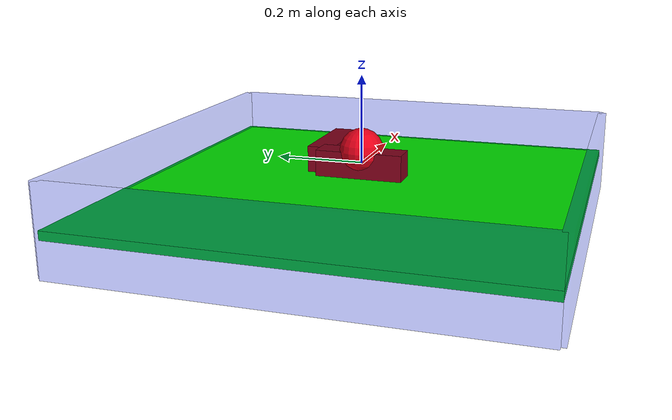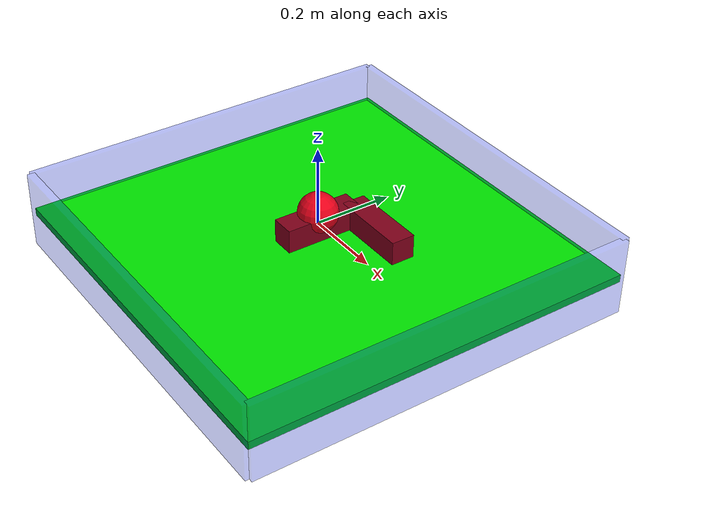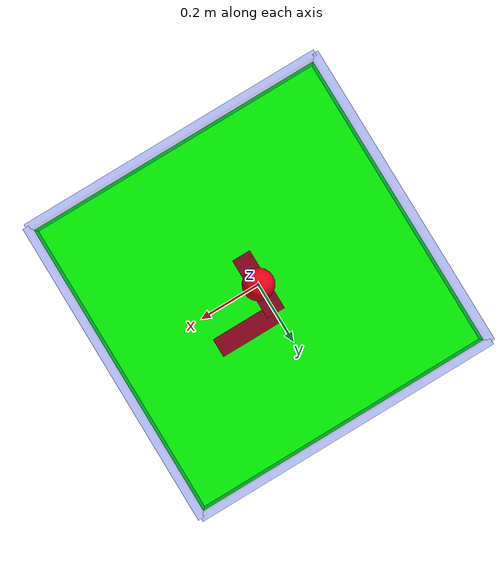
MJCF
<mujoco model="pushing2d">

    <compiler inertiafromgeom="auto" angle="radian" coordinate="local" />
    <option timestep="0.01" gravity="0 0 -9.81" iterations="20" integrator="Euler" />
    <default>
        <joint limited="false" damping="1" />
        <geom contype="1" conaffinity="1" condim="4" friction=".5 .1 .1" density="1000" margin="0.002" />
    </default>

    <worldbody>
        <camera name="maincam" mode= "fixed" fovy="75" euler="0 0 0" pos="0 0 .75"/>
        <body name="particle" pos="0 0 0.03">
            <inertial pos="0 0 0" mass="5" diaginertia="166.667 166.667 166.667"/>
            <geom name="particle_geom" type="sphere" size="0.05" rgba="0.9 0 0.1 1" />
            <joint name="ball_x" type="slide" pos="0 0 0" axis="1 0 0" />
            <joint name="ball_y" type="slide" pos="0 0 0" axis="0 1 0" />

            <site name="sensorsurf0" pos="0.05 0.0 0" rgba="0.3 0.2 0.1 0" size="0.008 0.008 0.008" type="ellipsoid"/>
            <site name="sensorsurf1" pos="0.0476 0.0155 0" rgba="0.3 0.2 0.1 0" size="0.008 0.008 0.008" type="ellipsoid"/>
            <site name="sensorsurf2" pos="0.0405 0.0294 0" rgba="0.3 0.2 0.1 0" size="0.008 0.008 0.008" type="ellipsoid"/>
            <site name="sensorsurf3" pos="0.0294 0.0405 0" rgba="0.3 0.2 0.1 0" size="0.008 0.008 0.008" type="ellipsoid"/>
            <site name="sensorsurf4" pos="0.0155 0.0476 0" rgba="0.3 0.2 0.1 0" size="0.008 0.008 0.008" type="ellipsoid"/>
            <site name="sensorsurf5" pos="0.0 0.05 0" rgba="0.3 0.2 0.1 0" size="0.008 0.008 0.008" type="ellipsoid"/>
            <site name="sensorsurf6" pos="-0.0155 0.0476 0" rgba="0.3 0.2 0.1 0" size="0.008 0.008 0.008" type="ellipsoid"/>
            <site name="sensorsurf7" pos="-0.0294 0.0405 0" rgba="0.3 0.2 0.1 0" size="0.008 0.008 0.008" type="ellipsoid"/>
            <site name="sensorsurf8" pos="-0.0405 0.0294 0" rgba="0.3 0.2 0.1 0" size="0.008 0.008 0.008" type="ellipsoid"/>
            <site name="sensorsurf9" pos="-0.0476 0.0155 0" rgba="0.3 0.2 0.1 0" size="0.008 0.008 0.008" type="ellipsoid"/>
            <site name="sensorsurf10" pos="-0.05 0.0 0" rgba="0.3 0.2 0.1 0" size="0.008 0.008 0.008" type="ellipsoid"/>
            <site name="sensorsurf11" pos="-0.0476 -0.0155 0" rgba="0.3 0.2 0.1 0" size="0.008 0.008 0.008" type="ellipsoid"/>
            <site name="sensorsurf12" pos="-0.0405 -0.0294 0" rgba="0.3 0.2 0.1 0" size="0.008 0.008 0.008" type="ellipsoid"/>
            <site name="sensorsurf13" pos="-0.0294 -0.0405 0" rgba="0.3 0.2 0.1 0" size="0.008 0.008 0.008" type="ellipsoid"/>
            <site name="sensorsurf14" pos="-0.0155 -0.0476 0" rgba="0.3 0.2 0.1 0" size="0.008 0.008 0.008" type="ellipsoid"/>
            <site name="sensorsurf15" pos="-0.0 -0.05 0" rgba="0.3 0.2 0.1 0" size="0.008 0.008 0.008" type="ellipsoid"/>
            <site name="sensorsurf16" pos="0.0155 -0.0476 0" rgba="0.3 0.2 0.1 0" size="0.008 0.008 0.008" type="ellipsoid"/>
            <site name="sensorsurf17" pos="0.0294 -0.0405 0" rgba="0.3 0.2 0.1 0" size="0.008 0.008 0.008" type="ellipsoid"/>
            <site name="sensorsurf18" pos="0.0405 -0.0294 0" rgba="0.3 0.2 0.1 0" size="0.008 0.008 0.008" type="ellipsoid"/>
            <site name="sensorsurf19" pos="0.0476 -0.0155 0" rgba="0.3 0.2 0.1 0" size="0.008 0.008 0.008" type="ellipsoid"/>

        </body>

        <body name="container" pos="0  0  -0.05">

            <body name="border_front" pos="0 -.5  0">
                 <geom type="box" size=".5 .01 .1" rgba="0 .1 .9 .3"/>
            </body>

            <body name="border_rear" pos="0 .5  0">
                 <geom type="box" size=".5 .01 .1" rgba="0 .1 .9 .3"/>
            </body>

            <body name="border_right" pos=".5 0  0">
                 <geom type="box" size=".01  .5 .1" rgba="0 .1 .9 .3"/>
            </body>

            <body name="border_left" pos="-.5 0  0">
                 <geom type="box" size=".01  .5 .1" rgba="0 .1 .9 .3"/>
            </body>

            <body name="table" pos="0 0 -.01">
                 <geom type="box" size=".5  .5 .01" rgba="0 .9 0 1"/>
            </body>
        </body>

        <body name="object1" pos="0 0 0">
            <site name="reference_point" pos="0 0 0.02" size="0.025" type="sphere" rgba="0.9 0.2 0.1 0"/>
            <joint type="free"/>
            <geom type="box" size=".03 .1 .03" rgba="0.5 0.0 0.1 1" />
            <geom type="box" pos=".1 .1 0.0" size=".1 0.03 .03" rgba="0.5 0.0 0.1 1" />
        </body>

        <body name="goal_body" pos="0 0 0">
            <geom name="goal_point" pos="0 0 0.02" size="0.025" type="sphere" contype="0" conaffinity="0" rgba="0.1 0.2 0.9 0"/>
            <joint name="goalbody_x" type="slide" pos="0 0 0" axis="1 0 0" />
            <joint name="goalbody_y" type="slide" pos="0 0 0" axis="0 1 0" />
        </body>

    </worldbody>

     <sensor>

        <touch name="touchsensor0" site="sensorsurf0"/>
        <touch name="touchsensor1" site="sensorsurf1"/>
        <touch name="touchsensor2" site="sensorsurf2"/>
        <touch name="touchsensor3" site="sensorsurf3"/>
        <touch name="touchsensor4" site="sensorsurf4"/>
        <touch name="touchsensor5" site="sensorsurf5"/>
        <touch name="touchsensor6" site="sensorsurf6"/>
        <touch name="touchsensor7" site="sensorsurf7"/>
        <touch name="touchsensor8" site="sensorsurf8"/>
        <touch name="touchsensor9" site="sensorsurf9"/>
        <touch name="touchsensor10" site="sensorsurf10"/>
        <touch name="touchsensor11" site="sensorsurf11"/>
        <touch name="touchsensor12" site="sensorsurf12"/>
        <touch name="touchsensor13" site="sensorsurf13"/>
        <touch name="touchsensor14" site="sensorsurf14"/>
        <touch name="touchsensor15" site="sensorsurf15"/>
        <touch name="touchsensor16" site="sensorsurf16"/>
        <touch name="touchsensor17" site="sensorsurf17"/>
        <touch name="touchsensor18" site="sensorsurf18"/>
        <touch name="touchsensor19" site="sensorsurf19"/>
     </sensor>

    <actuator>
        <motor joint="ball_x" ctrlrange="-100.0 100.0" ctrllimited="true"/>
        <motor joint="ball_y" ctrlrange="-100.0 100.0" ctrllimited="true"/>
    </actuator>
</mujoco>
